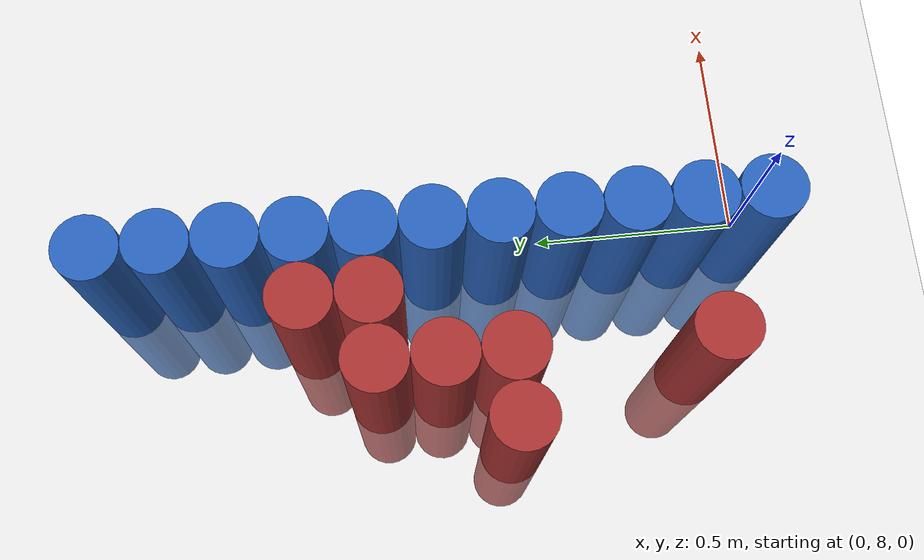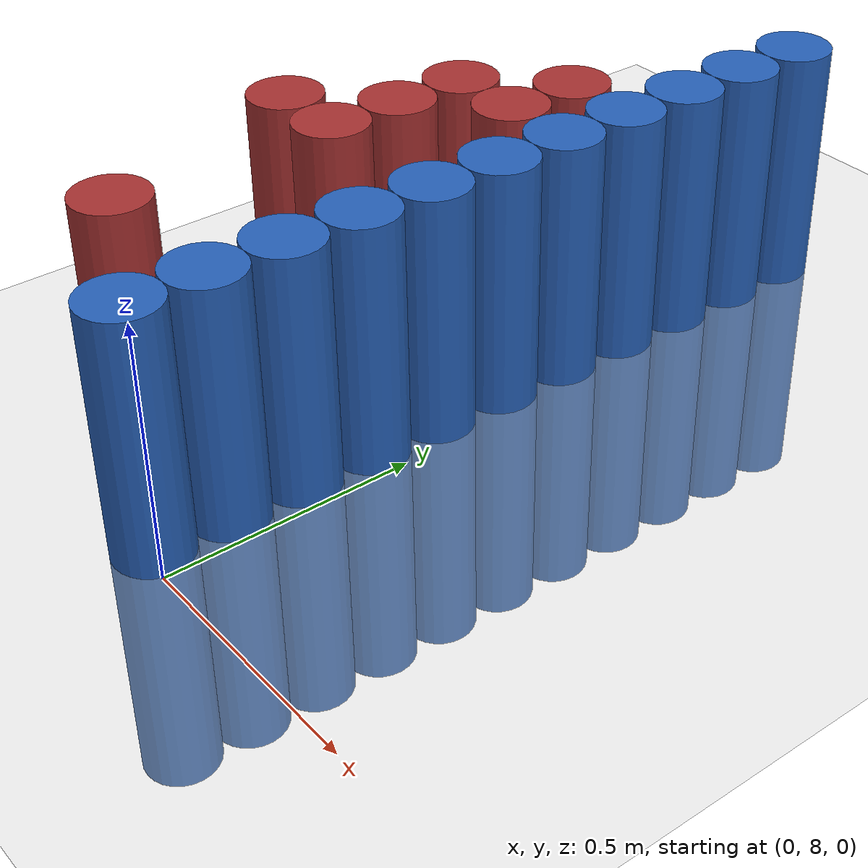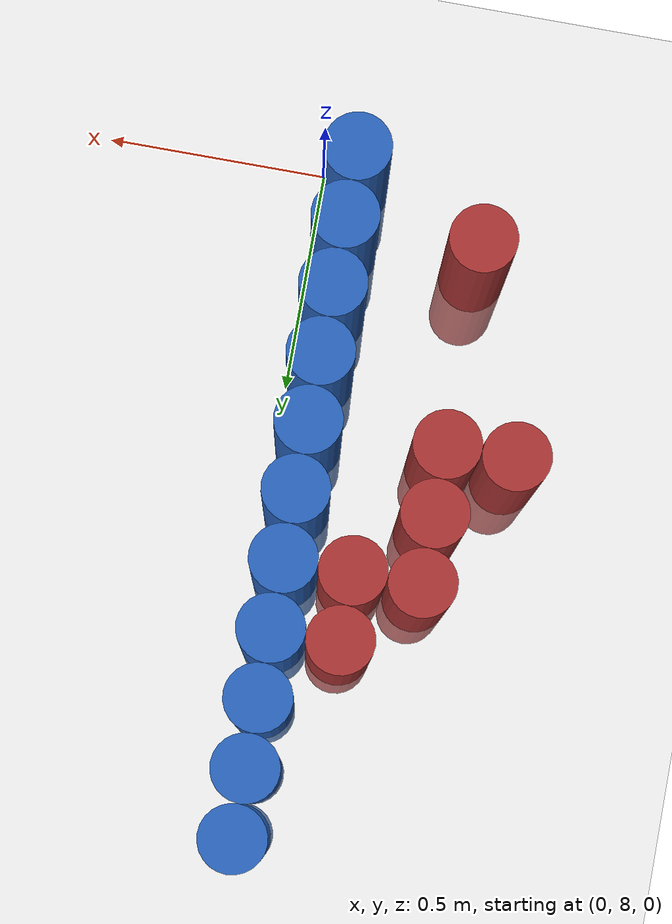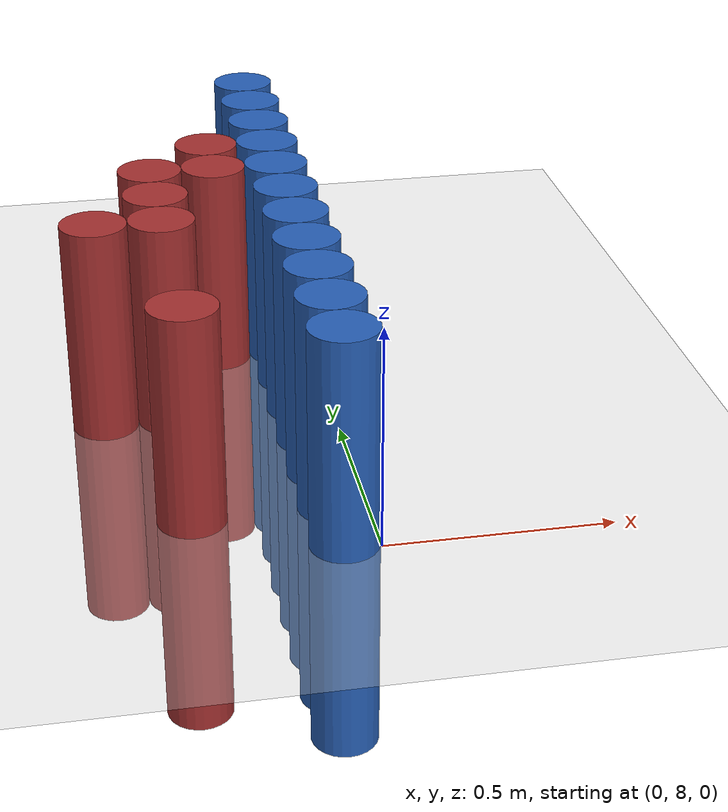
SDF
<sdf version="1.6">
 <world name="default">
  <model name="ground_plane">
   <static>1</static>
   <link name="link">
    <collision name="collision">
     <geometry><plane><normal>0 0 1</normal><size>100 100</size></plane></geometry>
     <surface><friction><ode><mu>100</mu><mu2>50</mu2></ode></friction></surface>
    </collision>
    <visual name="visual">
     <cast_shadows>0</cast_shadows>
     <geometry><plane><normal>0 0 1</normal><size>100 100</size></plane></geometry>
     <material>
      <script><uri>file://media/materials/scripts/gazebo.material</uri><name>Gazebo/Grey</name></script>
     </material>
    </visual>
   </link>
  </model>
  <model name="unit_cylinder_213">
   <static>1</static>
   <pose>-0.525000 8.625000 0.000000 0.000000 0.000000 0.000000</pose>
   <link name="link">
    <inertial>
     <mass>1</mass>
     <inertia><ixx>0.145833</ixx><ixy>0</ixy><ixz>0</ixz><iyy>0.145833</iyy><iyz>0</iyz><izz>0.125</izz></inertia>
    </inertial>
    <collision name="collision">
     <geometry><cylinder><radius>0.075000</radius><length>1</length></cylinder></geometry>
    </collision>
    <visual name="visual">
     <geometry><cylinder><radius>0.075000</radius><length>1</length></cylinder></geometry>
     <material>
      <ambient>0.648000 0.192000 0.192000 1</ambient>
      <diffuse>0.648000 0.192000 0.192000 1</diffuse>
     </material>
     <material>
      <script><name>Gazebo/Grey</name><uri>file://media/materials/scripts/gazebo.material</uri></script>
     </material>
    </visual>
   </link>
  </model>
  <model name="unit_cylinder_224">
   <static>1</static>
   <pose>-0.375000 8.175000 0.000000 0.000000 0.000000 0.000000</pose>
   <link name="link">
    <inertial>
     <mass>1</mass>
     <inertia><ixx>0.145833</ixx><ixy>0</ixy><ixz>0</ixz><iyy>0.145833</iyy><iyz>0</iyz><izz>0.125</izz></inertia>
    </inertial>
    <collision name="collision">
     <geometry><cylinder><radius>0.075000</radius><length>1</length></cylinder></geometry>
    </collision>
    <visual name="visual">
     <geometry><cylinder><radius>0.075000</radius><length>1</length></cylinder></geometry>
     <material>
      <ambient>0.648000 0.192000 0.192000 1</ambient>
      <diffuse>0.648000 0.192000 0.192000 1</diffuse>
     </material>
     <material>
      <script><name>Gazebo/Grey</name><uri>file://media/materials/scripts/gazebo.material</uri></script>
     </material>
    </visual>
   </link>
  </model>
  <model name="unit_cylinder_225">
   <static>1</static>
   <pose>-0.375000 8.625000 0.000000 0.000000 0.000000 0.000000</pose>
   <link name="link">
    <inertial>
     <mass>1</mass>
     <inertia><ixx>0.145833</ixx><ixy>0</ixy><ixz>0</ixz><iyy>0.145833</iyy><iyz>0</iyz><izz>0.125</izz></inertia>
    </inertial>
    <collision name="collision">
     <geometry><cylinder><radius>0.075000</radius><length>1</length></cylinder></geometry>
    </collision>
    <visual name="visual">
     <geometry><cylinder><radius>0.075000</radius><length>1</length></cylinder></geometry>
     <material>
      <ambient>0.648000 0.192000 0.192000 1</ambient>
      <diffuse>0.648000 0.192000 0.192000 1</diffuse>
     </material>
     <material>
      <script><name>Gazebo/Grey</name><uri>file://media/materials/scripts/gazebo.material</uri></script>
     </material>
    </visual>
   </link>
  </model>
  <model name="unit_cylinder_226">
   <static>1</static>
   <pose>-0.375000 8.775000 0.000000 0.000000 0.000000 0.000000</pose>
   <link name="link">
    <inertial>
     <mass>1</mass>
     <inertia><ixx>0.145833</ixx><ixy>0</ixy><ixz>0</ixz><iyy>0.145833</iyy><iyz>0</iyz><izz>0.125</izz></inertia>
    </inertial>
    <collision name="collision">
     <geometry><cylinder><radius>0.075000</radius><length>1</length></cylinder></geometry>
    </collision>
    <visual name="visual">
     <geometry><cylinder><radius>0.075000</radius><length>1</length></cylinder></geometry>
     <material>
      <ambient>0.648000 0.192000 0.192000 1</ambient>
      <diffuse>0.648000 0.192000 0.192000 1</diffuse>
     </material>
     <material>
      <script><name>Gazebo/Grey</name><uri>file://media/materials/scripts/gazebo.material</uri></script>
     </material>
    </visual>
   </link>
  </model>
  <model name="unit_cylinder_227">
   <static>1</static>
   <pose>-0.375000 8.925000 0.000000 0.000000 0.000000 0.000000</pose>
   <link name="link">
    <inertial>
     <mass>1</mass>
     <inertia><ixx>0.145833</ixx><ixy>0</ixy><ixz>0</ixz><iyy>0.145833</iyy><iyz>0</iyz><izz>0.125</izz></inertia>
    </inertial>
    <collision name="collision">
     <geometry><cylinder><radius>0.075000</radius><length>1</length></cylinder></geometry>
    </collision>
    <visual name="visual">
     <geometry><cylinder><radius>0.075000</radius><length>1</length></cylinder></geometry>
     <material>
      <ambient>0.648000 0.192000 0.192000 1</ambient>
      <diffuse>0.648000 0.192000 0.192000 1</diffuse>
     </material>
     <material>
      <script><name>Gazebo/Grey</name><uri>file://media/materials/scripts/gazebo.material</uri></script>
     </material>
    </visual>
   </link>
  </model>
  <model name="unit_cylinder_241">
   <static>1</static>
   <pose>-0.225000 8.925000 0.000000 0.000000 0.000000 0.000000</pose>
   <link name="link">
    <inertial>
     <mass>1</mass>
     <inertia><ixx>0.145833</ixx><ixy>0</ixy><ixz>0</ixz><iyy>0.145833</iyy><iyz>0</iyz><izz>0.125</izz></inertia>
    </inertial>
    <collision name="collision">
     <geometry><cylinder><radius>0.075000</radius><length>1</length></cylinder></geometry>
    </collision>
    <visual name="visual">
     <geometry><cylinder><radius>0.075000</radius><length>1</length></cylinder></geometry>
     <material>
      <ambient>0.648000 0.192000 0.192000 1</ambient>
      <diffuse>0.648000 0.192000 0.192000 1</diffuse>
     </material>
     <material>
      <script><name>Gazebo/Grey</name><uri>file://media/materials/scripts/gazebo.material</uri></script>
     </material>
    </visual>
   </link>
  </model>
  <model name="unit_cylinder_242">
   <static>1</static>
   <pose>-0.225000 9.075000 0.000000 0.000000 0.000000 0.000000</pose>
   <link name="link">
    <inertial>
     <mass>1</mass>
     <inertia><ixx>0.145833</ixx><ixy>0</ixy><ixz>0</ixz><iyy>0.145833</iyy><iyz>0</iyz><izz>0.125</izz></inertia>
    </inertial>
    <collision name="collision">
     <geometry><cylinder><radius>0.075000</radius><length>1</length></cylinder></geometry>
    </collision>
    <visual name="visual">
     <geometry><cylinder><radius>0.075000</radius><length>1</length></cylinder></geometry>
     <material>
      <ambient>0.648000 0.192000 0.192000 1</ambient>
      <diffuse>0.648000 0.192000 0.192000 1</diffuse>
     </material>
     <material>
      <script><name>Gazebo/Grey</name><uri>file://media/materials/scripts/gazebo.material</uri></script>
     </material>
    </visual>
   </link>
  </model>
  <model name="unit_cylinder_262">
   <static>1</static>
   <pose>-0.075000 8.025000 0.000000 0.000000 0.000000 0.000000</pose>
   <link name="link">
    <inertial>
     <mass>1</mass>
     <inertia><ixx>0.145833</ixx><ixy>0</ixy><ixz>0</ixz><iyy>0.145833</iyy><iyz>0</iyz><izz>0.125</izz></inertia>
    </inertial>
    <collision name="collision">
     <geometry><cylinder><radius>0.075000</radius><length>1</length></cylinder></geometry>
    </collision>
    <visual name="visual">
     <geometry><cylinder><radius>0.075000</radius><length>1</length></cylinder></geometry>
     <material>
      <ambient>0.152000 0.379000 0.720000 1</ambient>
      <diffuse>0.152000 0.379000 0.720000 1</diffuse>
     </material>
     <material>
      <script><name>Gazebo/Grey</name><uri>file://media/materials/scripts/gazebo.material</uri></script>
     </material>
    </visual>
   </link>
  </model>
  <model name="unit_cylinder_263">
   <static>1</static>
   <pose>-0.075000 8.175000 0.000000 0.000000 0.000000 0.000000</pose>
   <link name="link">
    <inertial>
     <mass>1</mass>
     <inertia><ixx>0.145833</ixx><ixy>0</ixy><ixz>0</ixz><iyy>0.145833</iyy><iyz>0</iyz><izz>0.125</izz></inertia>
    </inertial>
    <collision name="collision">
     <geometry><cylinder><radius>0.075000</radius><length>1</length></cylinder></geometry>
    </collision>
    <visual name="visual">
     <geometry><cylinder><radius>0.075000</radius><length>1</length></cylinder></geometry>
     <material>
      <ambient>0.152000 0.379000 0.720000 1</ambient>
      <diffuse>0.152000 0.379000 0.720000 1</diffuse>
     </material>
     <material>
      <script><name>Gazebo/Grey</name><uri>file://media/materials/scripts/gazebo.material</uri></script>
     </material>
    </visual>
   </link>
  </model>
  <model name="unit_cylinder_264">
   <static>1</static>
   <pose>-0.075000 8.325000 0.000000 0.000000 0.000000 0.000000</pose>
   <link name="link">
    <inertial>
     <mass>1</mass>
     <inertia><ixx>0.145833</ixx><ixy>0</ixy><ixz>0</ixz><iyy>0.145833</iyy><iyz>0</iyz><izz>0.125</izz></inertia>
    </inertial>
    <collision name="collision">
     <geometry><cylinder><radius>0.075000</radius><length>1</length></cylinder></geometry>
    </collision>
    <visual name="visual">
     <geometry><cylinder><radius>0.075000</radius><length>1</length></cylinder></geometry>
     <material>
      <ambient>0.152000 0.379000 0.720000 1</ambient>
      <diffuse>0.152000 0.379000 0.720000 1</diffuse>
     </material>
     <material>
      <script><name>Gazebo/Grey</name><uri>file://media/materials/scripts/gazebo.material</uri></script>
     </material>
    </visual>
   </link>
  </model>
  <model name="unit_cylinder_265">
   <static>1</static>
   <pose>-0.075000 8.475000 0.000000 0.000000 0.000000 0.000000</pose>
   <link name="link">
    <inertial>
     <mass>1</mass>
     <inertia><ixx>0.145833</ixx><ixy>0</ixy><ixz>0</ixz><iyy>0.145833</iyy><iyz>0</iyz><izz>0.125</izz></inertia>
    </inertial>
    <collision name="collision">
     <geometry><cylinder><radius>0.075000</radius><length>1</length></cylinder></geometry>
    </collision>
    <visual name="visual">
     <geometry><cylinder><radius>0.075000</radius><length>1</length></cylinder></geometry>
     <material>
      <ambient>0.152000 0.379000 0.720000 1</ambient>
      <diffuse>0.152000 0.379000 0.720000 1</diffuse>
     </material>
     <material>
      <script><name>Gazebo/Grey</name><uri>file://media/materials/scripts/gazebo.material</uri></script>
     </material>
    </visual>
   </link>
  </model>
  <model name="unit_cylinder_266">
   <static>1</static>
   <pose>-0.075000 8.625000 0.000000 0.000000 0.000000 0.000000</pose>
   <link name="link">
    <inertial>
     <mass>1</mass>
     <inertia><ixx>0.145833</ixx><ixy>0</ixy><ixz>0</ixz><iyy>0.145833</iyy><iyz>0</iyz><izz>0.125</izz></inertia>
    </inertial>
    <collision name="collision">
     <geometry><cylinder><radius>0.075000</radius><length>1</length></cylinder></geometry>
    </collision>
    <visual name="visual">
     <geometry><cylinder><radius>0.075000</radius><length>1</length></cylinder></geometry>
     <material>
      <ambient>0.152000 0.379000 0.720000 1</ambient>
      <diffuse>0.152000 0.379000 0.720000 1</diffuse>
     </material>
     <material>
      <script><name>Gazebo/Grey</name><uri>file://media/materials/scripts/gazebo.material</uri></script>
     </material>
    </visual>
   </link>
  </model>
  <model name="unit_cylinder_267">
   <static>1</static>
   <pose>-0.075000 8.775000 0.000000 0.000000 0.000000 0.000000</pose>
   <link name="link">
    <inertial>
     <mass>1</mass>
     <inertia><ixx>0.145833</ixx><ixy>0</ixy><ixz>0</ixz><iyy>0.145833</iyy><iyz>0</iyz><izz>0.125</izz></inertia>
    </inertial>
    <collision name="collision">
     <geometry><cylinder><radius>0.075000</radius><length>1</length></cylinder></geometry>
    </collision>
    <visual name="visual">
     <geometry><cylinder><radius>0.075000</radius><length>1</length></cylinder></geometry>
     <material>
      <ambient>0.152000 0.379000 0.720000 1</ambient>
      <diffuse>0.152000 0.379000 0.720000 1</diffuse>
     </material>
     <material>
      <script><name>Gazebo/Grey</name><uri>file://media/materials/scripts/gazebo.material</uri></script>
     </material>
    </visual>
   </link>
  </model>
  <model name="unit_cylinder_268">
   <static>1</static>
   <pose>-0.075000 8.925000 0.000000 0.000000 0.000000 0.000000</pose>
   <link name="link">
    <inertial>
     <mass>1</mass>
     <inertia><ixx>0.145833</ixx><ixy>0</ixy><ixz>0</ixz><iyy>0.145833</iyy><iyz>0</iyz><izz>0.125</izz></inertia>
    </inertial>
    <collision name="collision">
     <geometry><cylinder><radius>0.075000</radius><length>1</length></cylinder></geometry>
    </collision>
    <visual name="visual">
     <geometry><cylinder><radius>0.075000</radius><length>1</length></cylinder></geometry>
     <material>
      <ambient>0.152000 0.379000 0.720000 1</ambient>
      <diffuse>0.152000 0.379000 0.720000 1</diffuse>
     </material>
     <material>
      <script><name>Gazebo/Grey</name><uri>file://media/materials/scripts/gazebo.material</uri></script>
     </material>
    </visual>
   </link>
  </model>
  <model name="unit_cylinder_269">
   <static>1</static>
   <pose>-0.075000 9.075000 0.000000 0.000000 0.000000 0.000000</pose>
   <link name="link">
    <inertial>
     <mass>1</mass>
     <inertia><ixx>0.145833</ixx><ixy>0</ixy><ixz>0</ixz><iyy>0.145833</iyy><iyz>0</iyz><izz>0.125</izz></inertia>
    </inertial>
    <collision name="collision">
     <geometry><cylinder><radius>0.075000</radius><length>1</length></cylinder></geometry>
    </collision>
    <visual name="visual">
     <geometry><cylinder><radius>0.075000</radius><length>1</length></cylinder></geometry>
     <material>
      <ambient>0.152000 0.379000 0.720000 1</ambient>
      <diffuse>0.152000 0.379000 0.720000 1</diffuse>
     </material>
     <material>
      <script><name>Gazebo/Grey</name><uri>file://media/materials/scripts/gazebo.material</uri></script>
     </material>
    </visual>
   </link>
  </model>
  <model name="unit_cylinder_270">
   <static>1</static>
   <pose>-0.075000 9.225000 0.000000 0.000000 0.000000 0.000000</pose>
   <link name="link">
    <inertial>
     <mass>1</mass>
     <inertia><ixx>0.145833</ixx><ixy>0</ixy><ixz>0</ixz><iyy>0.145833</iyy><iyz>0</iyz><izz>0.125</izz></inertia>
    </inertial>
    <collision name="collision">
     <geometry><cylinder><radius>0.075000</radius><length>1</length></cylinder></geometry>
    </collision>
    <visual name="visual">
     <geometry><cylinder><radius>0.075000</radius><length>1</length></cylinder></geometry>
     <material>
      <ambient>0.152000 0.379000 0.720000 1</ambient>
      <diffuse>0.152000 0.379000 0.720000 1</diffuse>
     </material>
     <material>
      <script><name>Gazebo/Grey</name><uri>file://media/materials/scripts/gazebo.material</uri></script>
     </material>
    </visual>
   </link>
  </model>
  <model name="unit_cylinder_271">
   <static>1</static>
   <pose>-0.075000 9.375000 0.000000 0.000000 0.000000 0.000000</pose>
   <link name="link">
    <inertial>
     <mass>1</mass>
     <inertia><ixx>0.145833</ixx><ixy>0</ixy><ixz>0</ixz><iyy>0.145833</iyy><iyz>0</iyz><izz>0.125</izz></inertia>
    </inertial>
    <collision name="collision">
     <geometry><cylinder><radius>0.075000</radius><length>1</length></cylinder></geometry>
    </collision>
    <visual name="visual">
     <geometry><cylinder><radius>0.075000</radius><length>1</length></cylinder></geometry>
     <material>
      <ambient>0.152000 0.379000 0.720000 1</ambient>
      <diffuse>0.152000 0.379000 0.720000 1</diffuse>
     </material>
     <material>
      <script><name>Gazebo/Grey</name><uri>file://media/materials/scripts/gazebo.material</uri></script>
     </material>
    </visual>
   </link>
  </model>
  <model name="unit_cylinder_272">
   <static>1</static>
   <pose>-0.075000 9.525000 0.000000 0.000000 0.000000 0.000000</pose>
   <link name="link">
    <inertial>
     <mass>1</mass>
     <inertia><ixx>0.145833</ixx><ixy>0</ixy><ixz>0</ixz><iyy>0.145833</iyy><iyz>0</iyz><izz>0.125</izz></inertia>
    </inertial>
    <collision name="collision">
     <geometry><cylinder><radius>0.075000</radius><length>1</length></cylinder></geometry>
    </collision>
    <visual name="visual">
     <geometry><cylinder><radius>0.075000</radius><length>1</length></cylinder></geometry>
     <material>
      <ambient>0.152000 0.379000 0.720000 1</ambient>
      <diffuse>0.152000 0.379000 0.720000 1</diffuse>
     </material>
     <material>
      <script><name>Gazebo/Grey</name><uri>file://media/materials/scripts/gazebo.material</uri></script>
     </material>
    </visual>
   </link>
  </model>
 </world>
</sdf>
